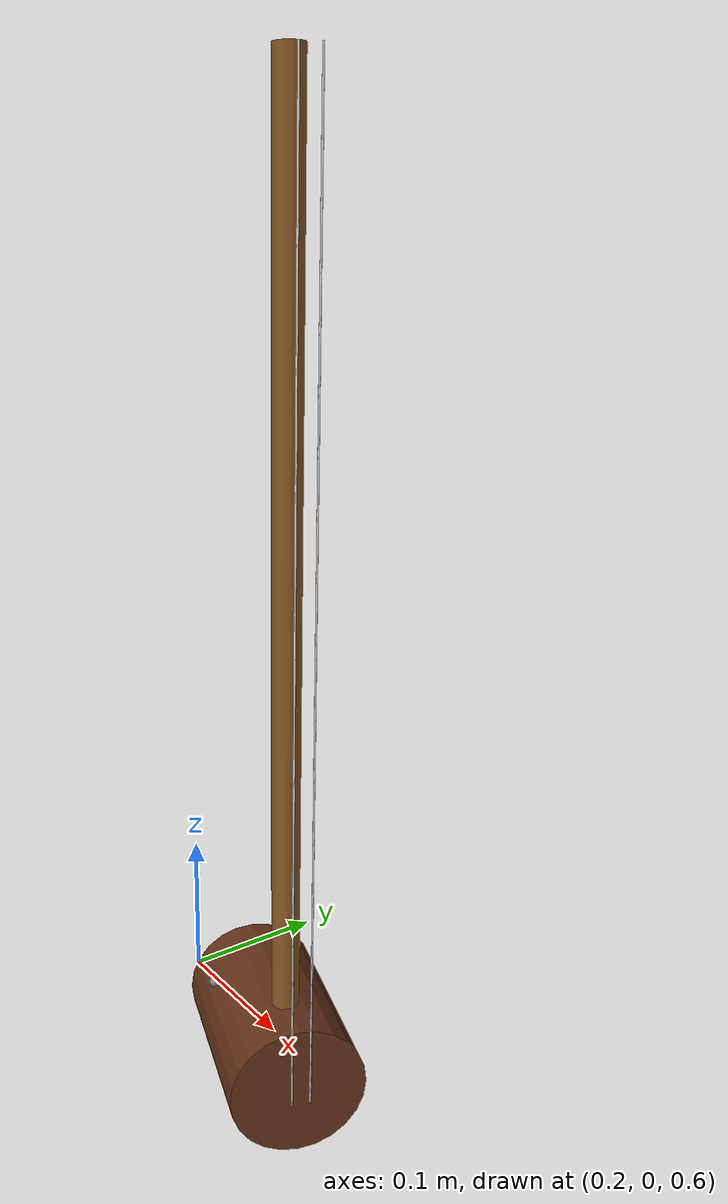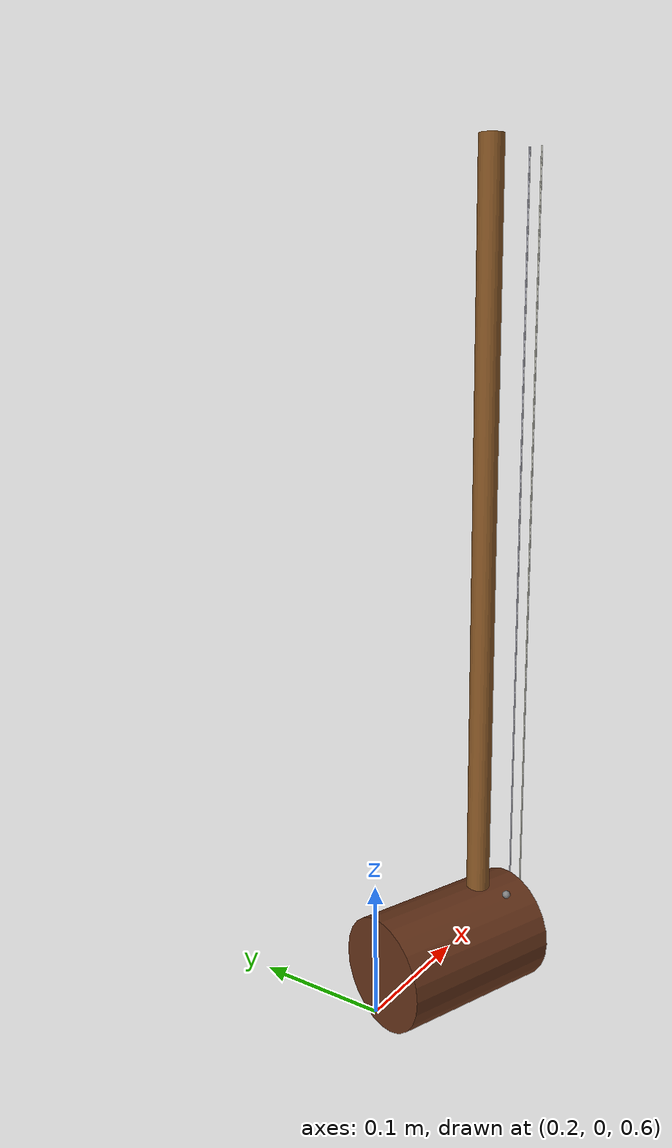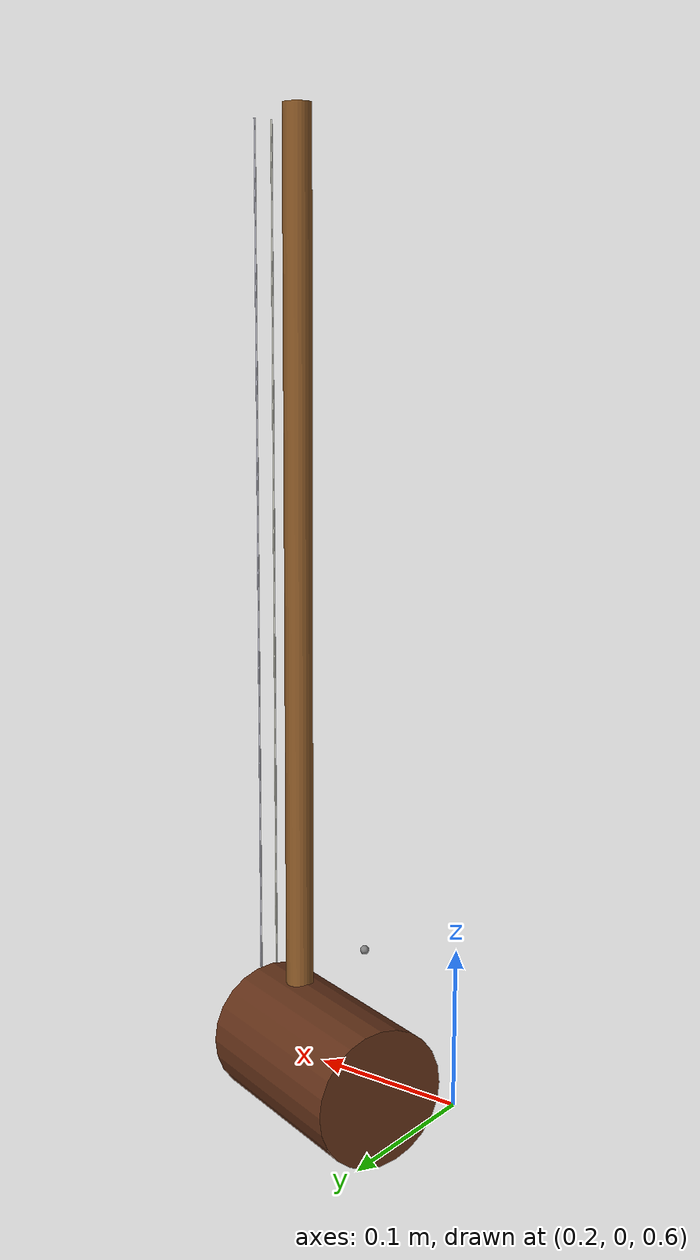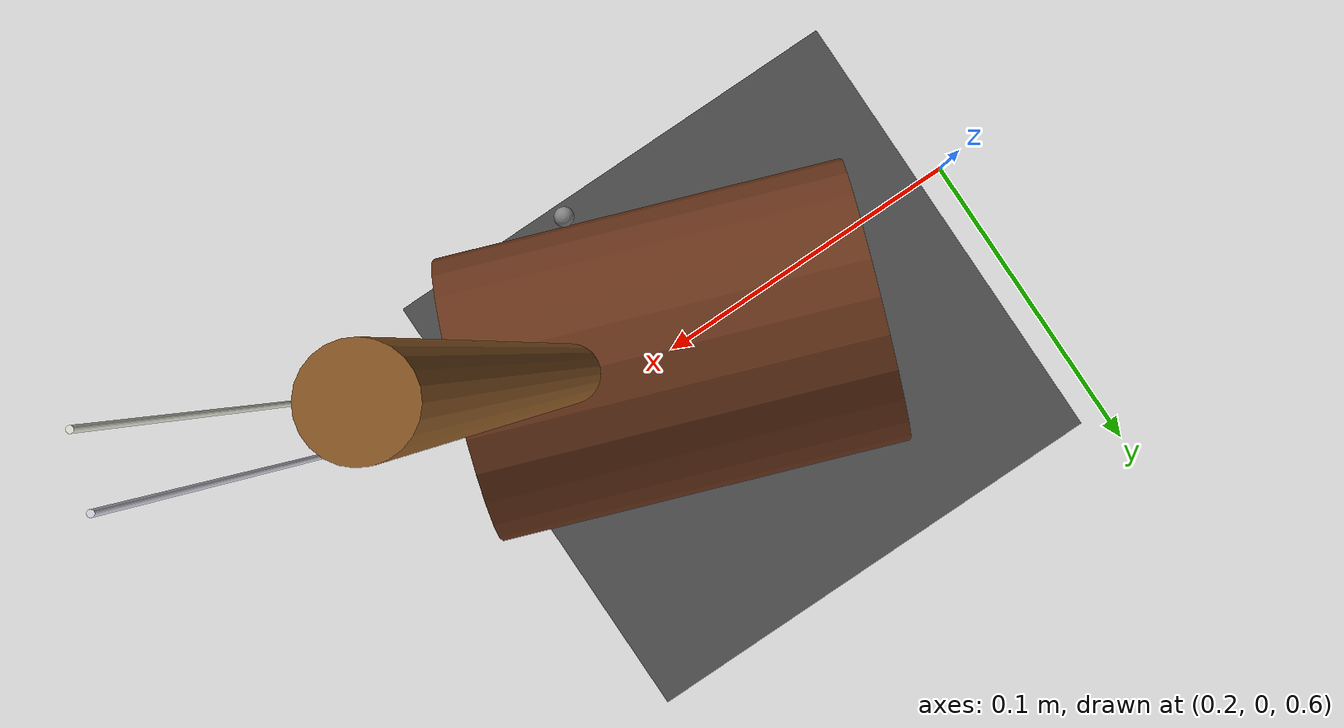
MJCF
<mujoco model="erhu">
  <compiler angle="radian" autolimits="true"/>
  <option timestep="0.002" gravity="0 0 -9.8" integrator="implicitfast">
    <flag contact="enable"/>
  </option>

  <default>
    <geom density="750" solref="0.004 1" solimp="0.9 0.95 0.001" contype="1" conaffinity="2"/>
    <joint damping="0.01"/>
    <default class="string_contact">
      <geom friction="1.2 0.02 0.001" solref="0.025 4" solimp="0.9 0.95 0.001" condim="3"/>
    </default>
  </default>

  <worldbody>
    <light pos="0 0 2" dir="0 0 -1" diffuse="1 1 1"/>
    <geom name="floor" type="plane" size="2 2 0.1" rgba="0.3 0.3 0.3 1" contype="0" conaffinity="0"/>

    <!-- ============================ ERHU BODY ============================ -->
    <body name="erhu_root" pos="0.3 0 0.6" euler="0 0 -0.35">
      <!--joint name="erhu_root_free" type="free"/-->

      <body name="sound_box" pos="0 0 0">
        <geom name="sound_box_geom" type="cylinder" size="0.045 0.065"
              rgba="0.4 0.2 0.1 1" mass="0.35" zaxis="1 0 0"/>
        <site name="tailpiece" pos="0.02 -0.045 0.06" size="0.003"/>

        <body name="neck" pos="0.03 0 0">
          <geom name="neck_geom" type="cylinder" size="0.009 0.30"
                pos="0 0 0.30" rgba="0.55 0.35 0.15 1" mass="0.12"/>
        </body>
      </body>

      <body name="string_D" pos="0.07 -0.006 0.595">
        <geom name="string_D_geom" type="cylinder" size="0.0006 0.3"
              pos="0 0 -0.3" rgba="0.9 0.9 0.85 1" mass="0.003"
              class="string_contact"/>
      </body>

      <body name="string_A" pos="0.07 0.006 0.595">
        <geom name="string_A_geom" type="cylinder" size="0.0006 0.3"
              pos="0 0 -0.3" rgba="0.85 0.85 0.9 1" mass="0.0022"
              class="string_contact"/>
      </body>
          </body>
  </worldbody>

  <sensor>
    <force name="bow_arm_contact" site="bow_frog_site"/>
  </sensor>
</mujoco>
